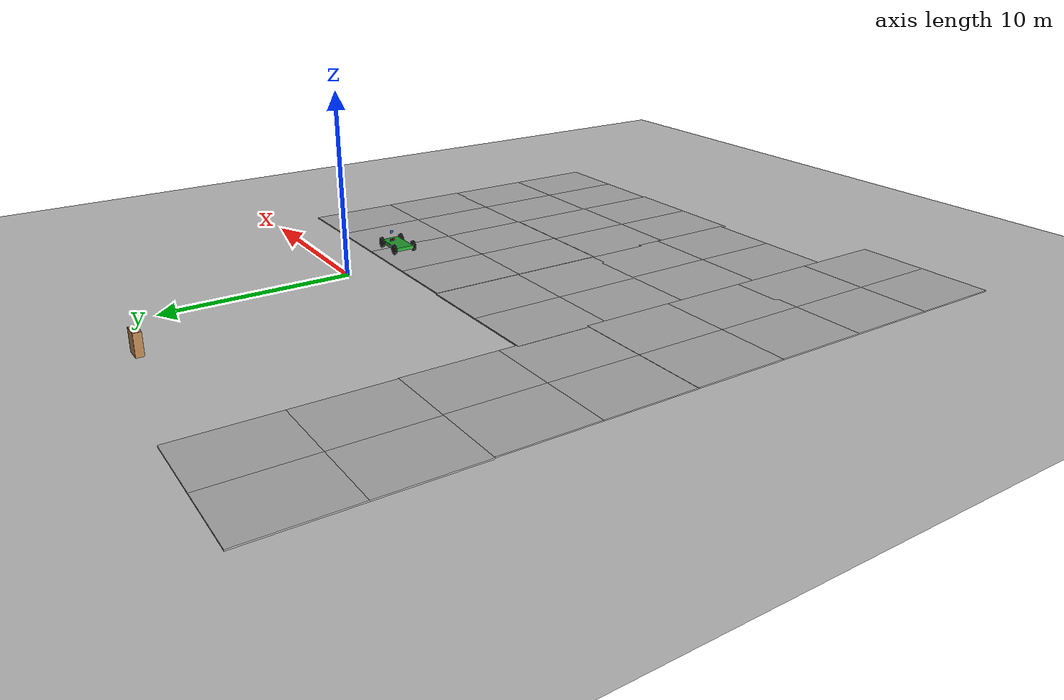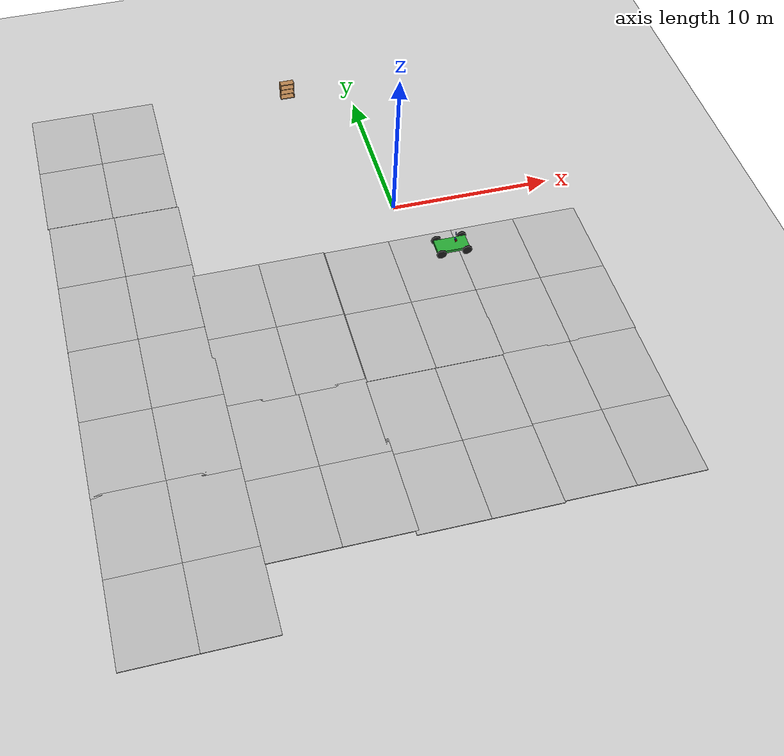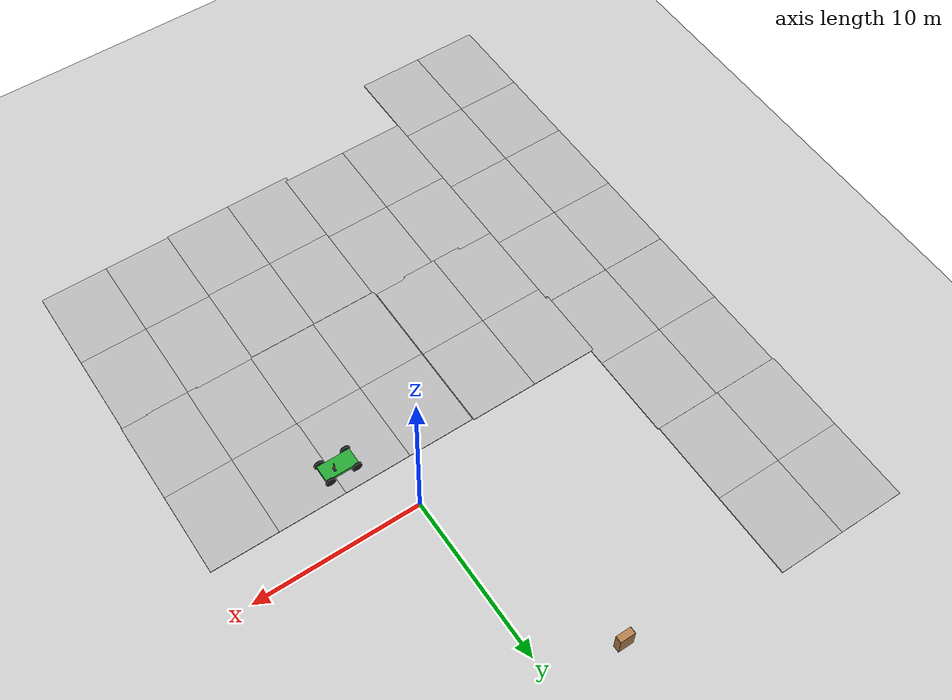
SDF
<sdf version="1.6">
 <world name="default">
  <light name="sun" type="directional">
   <pose>0 0 10 0 -0 0</pose>
   <diffuse>0.8 0.8 0.8 1</diffuse>
   <specular>0.1 0.1 0.1 1</specular>
   <attenuation>
    <range>1000</range>
    <constant>0.9</constant>
    <linear>0.01</linear>
    <quadratic>0.001</quadratic>
   </attenuation>
   <direction>-0.5 0.5 -1</direction>
  </light>
  <model name="ground_plane">
   <static>1</static>
   <link name="link">
    <collision name="collision">
     <geometry><plane><normal>0 0 1</normal><size>100 100</size></plane></geometry>
     <surface><friction><ode><mu>100</mu><mu2>50</mu2></ode></friction></surface>
    </collision>
    <visual name="visual">
     <cast_shadows>0</cast_shadows>
     <geometry><plane><normal>0 0 1</normal><size>100 100</size></plane></geometry>
     <material>
      <script><uri>file://media/materials/scripts/gazebo.material</uri><name>Gazebo/Grey</name></script>
     </material>
    </visual>
   </link>
  </model>
  <gravity>0 0 -9.8</gravity>
  <magnetic_field>6e-06 2.3e-05 -4.2e-05</magnetic_field>
  <atmosphere type="adiabatic"/>
  <physics name="default_physics" default="0" type="ode">
   <max_step_size>0.001</max_step_size>
   <real_time_factor>1</real_time_factor>
   <real_time_update_rate>1000</real_time_update_rate>
  </physics>
  <scene><ambient>0.4 0.4 0.4 1</ambient><background>0.7 0.7 0.7 1</background><shadows>1</shadows></scene>
  <spherical_coordinates>
   <surface_model>EARTH_WGS84</surface_model>
   <latitude_deg>0</latitude_deg>
   <longitude_deg>0</longitude_deg>
   <elevation>0</elevation>
   <heading_deg>0</heading_deg>
  </spherical_coordinates>
  <model name="mud_box">
   <static>1</static>
   <link name="link">
    <collision name="collision"><geometry><box><size>8 10 0.2</size></box></geometry></collision>
    <visual name="visual_1">
     <pose>-2 2.5 0 0 -0 0</pose>
     <cast_shadows>0</cast_shadows>
     <geometry><box><size>4 5 0.2</size></box></geometry>
     <material>
      <script>
       <uri>model://mud_box/materials/scripts</uri>
       <uri>model://mud_box/materials/textures</uri>
       <name>vrc/mud</name>
      </script>
     </material>
    </visual>
    <visual name="visual_2">
     <pose>2 2.5 0 0 -0 0</pose>
     <cast_shadows>0</cast_shadows>
     <geometry><box><size>4 5 0.2</size></box></geometry>
     <material>
      <script>
       <uri>model://mud_box/materials/scripts</uri>
       <uri>model://mud_box/materials/textures</uri>
       <name>vrc/mud</name>
      </script>
     </material>
    </visual>
    <visual name="visual_3">
     <pose>2 -2.5 0 0 -0 0</pose>
     <cast_shadows>0</cast_shadows>
     <geometry><box><size>4 5 0.2</size></box></geometry>
     <material>
      <script>
       <uri>model://mud_box/materials/scripts</uri>
       <uri>model://mud_box/materials/textures</uri>
       <name>vrc/mud</name>
      </script>
     </material>
    </visual>
    <visual name="visual_4">
     <pose>-2 -2.5 0 0 -0 0</pose>
     <cast_shadows>0</cast_shadows>
     <geometry><box><size>4 5 0.2</size></box></geometry>
     <material>
      <script>
       <uri>model://mud_box/materials/scripts</uri>
       <uri>model://mud_box/materials/textures</uri>
       <name>vrc/mud</name>
      </script>
     </material>
    </visual>
   </link>
   <pose>-16.9962 -11.5989 -0.09 0 -0 0</pose>
  </model>
  <model name="mud_box_clone">
   <static>1</static>
   <link name="link">
    <collision name="collision"><geometry><box><size>8 10 0.2</size></box></geometry></collision>
    <visual name="visual_1">
     <pose>-2 2.5 0 0 -0 0</pose>
     <cast_shadows>0</cast_shadows>
     <geometry><box><size>4 5 0.2</size></box></geometry>
     <material>
      <script>
       <uri>model://mud_box/materials/scripts</uri>
       <uri>model://mud_box/materials/textures</uri>
       <name>vrc/mud</name>
      </script>
     </material>
    </visual>
    <visual name="visual_2">
     <pose>2 2.5 0 0 -0 0</pose>
     <cast_shadows>0</cast_shadows>
     <geometry><box><size>4 5 0.2</size></box></geometry>
     <material>
      <script>
       <uri>model://mud_box/materials/scripts</uri>
       <uri>model://mud_box/materials/textures</uri>
       <name>vrc/mud</name>
      </script>
     </material>
    </visual>
    <visual name="visual_3">
     <pose>2 -2.5 0 0 -0 0</pose>
     <cast_shadows>0</cast_shadows>
     <geometry><box><size>4 5 0.2</size></box></geometry>
     <material>
      <script>
       <uri>model://mud_box/materials/scripts</uri>
       <uri>model://mud_box/materials/textures</uri>
       <name>vrc/mud</name>
      </script>
     </material>
    </visual>
    <visual name="visual_4">
     <pose>-2 -2.5 0 0 -0 0</pose>
     <cast_shadows>0</cast_shadows>
     <geometry><box><size>4 5 0.2</size></box></geometry>
     <material>
      <script>
       <uri>model://mud_box/materials/scripts</uri>
       <uri>model://mud_box/materials/textures</uri>
       <name>vrc/mud</name>
      </script>
     </material>
    </visual>
   </link>
   <pose>-9.14914 -7.62362 -0.09 0 -0 0</pose>
  </model>
  <model name="mud_box_clone_0">
   <static>1</static>
   <link name="link">
    <collision name="collision"><geometry><box><size>8 10 0.2</size></box></geometry></collision>
    <visual name="visual_1">
     <pose>-2 2.5 0 0 -0 0</pose>
     <cast_shadows>0</cast_shadows>
     <geometry><box><size>4 5 0.2</size></box></geometry>
     <material>
      <script>
       <uri>model://mud_box/materials/scripts</uri>
       <uri>model://mud_box/materials/textures</uri>
       <name>vrc/mud</name>
      </script>
     </material>
    </visual>
    <visual name="visual_2">
     <pose>2 2.5 0 0 -0 0</pose>
     <cast_shadows>0</cast_shadows>
     <geometry><box><size>4 5 0.2</size></box></geometry>
     <material>
      <script>
       <uri>model://mud_box/materials/scripts</uri>
       <uri>model://mud_box/materials/textures</uri>
       <name>vrc/mud</name>
      </script>
     </material>
    </visual>
    <visual name="visual_3">
     <pose>2 -2.5 0 0 -0 0</pose>
     <cast_shadows>0</cast_shadows>
     <geometry><box><size>4 5 0.2</size></box></geometry>
     <material>
      <script>
       <uri>model://mud_box/materials/scripts</uri>
       <uri>model://mud_box/materials/textures</uri>
       <name>vrc/mud</name>
      </script>
     </material>
    </visual>
    <visual name="visual_4">
     <pose>-2 -2.5 0 0 -0 0</pose>
     <cast_shadows>0</cast_shadows>
     <geometry><box><size>4 5 0.2</size></box></geometry>
     <material>
      <script>
       <uri>model://mud_box/materials/scripts</uri>
       <uri>model://mud_box/materials/textures</uri>
       <name>vrc/mud</name>
      </script>
     </material>
    </visual>
   </link>
   <pose>6.85038 -7.69484 -0.09 0 -0 0</pose>
  </model>
  <model name="mud_box_clone_1">
   <static>1</static>
   <link name="link">
    <collision name="collision"><geometry><box><size>8 10 0.2</size></box></geometry></collision>
    <visual name="visual_1">
     <pose>-2 2.5 0 0 -0 0</pose>
     <cast_shadows>0</cast_shadows>
     <geometry><box><size>4 5 0.2</size></box></geometry>
     <material>
      <script>
       <uri>model://mud_box/materials/scripts</uri>
       <uri>model://mud_box/materials/textures</uri>
       <name>vrc/mud</name>
      </script>
     </material>
    </visual>
    <visual name="visual_2">
     <pose>2 2.5 0 0 -0 0</pose>
     <cast_shadows>0</cast_shadows>
     <geometry><box><size>4 5 0.2</size></box></geometry>
     <material>
      <script>
       <uri>model://mud_box/materials/scripts</uri>
       <uri>model://mud_box/materials/textures</uri>
       <name>vrc/mud</name>
      </script>
     </material>
    </visual>
    <visual name="visual_3">
     <pose>2 -2.5 0 0 -0 0</pose>
     <cast_shadows>0</cast_shadows>
     <geometry><box><size>4 5 0.2</size></box></geometry>
     <material>
      <script>
       <uri>model://mud_box/materials/scripts</uri>
       <uri>model://mud_box/materials/textures</uri>
       <name>vrc/mud</name>
      </script>
     </material>
    </visual>
    <visual name="visual_4">
     <pose>-2 -2.5 0 0 -0 0</pose>
     <cast_shadows>0</cast_shadows>
     <geometry><box><size>4 5 0.2</size></box></geometry>
     <material>
      <script>
       <uri>model://mud_box/materials/scripts</uri>
       <uri>model://mud_box/materials/textures</uri>
       <name>vrc/mud</name>
      </script>
     </material>
    </visual>
   </link>
   <pose>-16.9856 -21.3949 -0.09 0 -0 0</pose>
  </model>
  <model name="mud_box_clone_2">
   <static>1</static>
   <link name="link">
    <collision name="collision"><geometry><box><size>8 10 0.2</size></box></geometry></collision>
    <visual name="visual_1">
     <pose>-2 2.5 0 0 -0 0</pose>
     <cast_shadows>0</cast_shadows>
     <geometry><box><size>4 5 0.2</size></box></geometry>
     <material>
      <script>
       <uri>model://mud_box/materials/scripts</uri>
       <uri>model://mud_box/materials/textures</uri>
       <name>vrc/mud</name>
      </script>
     </material>
    </visual>
    <visual name="visual_2">
     <pose>2 2.5 0 0 -0 0</pose>
     <cast_shadows>0</cast_shadows>
     <geometry><box><size>4 5 0.2</size></box></geometry>
     <material>
      <script>
       <uri>model://mud_box/materials/scripts</uri>
       <uri>model://mud_box/materials/textures</uri>
       <name>vrc/mud</name>
      </script>
     </material>
    </visual>
    <visual name="visual_3">
     <pose>2 -2.5 0 0 -0 0</pose>
     <cast_shadows>0</cast_shadows>
     <geometry><box><size>4 5 0.2</size></box></geometry>
     <material>
      <script>
       <uri>model://mud_box/materials/scripts</uri>
       <uri>model://mud_box/materials/textures</uri>
       <name>vrc/mud</name>
      </script>
     </material>
    </visual>
    <visual name="visual_4">
     <pose>-2 -2.5 0 0 -0 0</pose>
     <cast_shadows>0</cast_shadows>
     <geometry><box><size>4 5 0.2</size></box></geometry>
     <material>
      <script>
       <uri>model://mud_box/materials/scripts</uri>
       <uri>model://mud_box/materials/textures</uri>
       <name>vrc/mud</name>
      </script>
     </material>
    </visual>
   </link>
   <pose>-17.0738 8.34384 -0.09 0 -0 0</pose>
  </model>
  <model name="mud_box_clone_2_clone">
   <static>1</static>
   <link name="link">
    <collision name="collision"><geometry><box><size>8 10 0.2</size></box></geometry></collision>
    <visual name="visual_1">
     <pose>-2 2.5 0 0 -0 0</pose>
     <cast_shadows>0</cast_shadows>
     <geometry><box><size>4 5 0.2</size></box></geometry>
     <material>
      <script>
       <uri>model://mud_box/materials/scripts</uri>
       <uri>model://mud_box/materials/textures</uri>
       <name>vrc/mud</name>
      </script>
     </material>
    </visual>
    <visual name="visual_2">
     <pose>2 2.5 0 0 -0 0</pose>
     <cast_shadows>0</cast_shadows>
     <geometry><box><size>4 5 0.2</size></box></geometry>
     <material>
      <script>
       <uri>model://mud_box/materials/scripts</uri>
       <uri>model://mud_box/materials/textures</uri>
       <name>vrc/mud</name>
      </script>
     </material>
    </visual>
    <visual name="visual_3">
     <pose>2 -2.5 0 0 -0 0</pose>
     <cast_shadows>0</cast_shadows>
     <geometry><box><size>4 5 0.2</size></box></geometry>
     <material>
      <script>
       <uri>model://mud_box/materials/scripts</uri>
       <uri>model://mud_box/materials/textures</uri>
       <name>vrc/mud</name>
      </script>
     </material>
    </visual>
    <visual name="visual_4">
     <pose>-2 -2.5 0 0 -0 0</pose>
     <cast_shadows>0</cast_shadows>
     <geometry><box><size>4 5 0.2</size></box></geometry>
     <material>
      <script>
       <uri>model://mud_box/materials/scripts</uri>
       <uri>model://mud_box/materials/textures</uri>
       <name>vrc/mud</name>
      </script>
     </material>
    </visual>
   </link>
   <pose>-17.0012 -1.66156 -0.098473 3.14159 -0 3.14159</pose>
  </model>
  <model name="mud_box_clone_2_clone_0">
   <static>1</static>
   <link name="link">
    <collision name="collision"><geometry><box><size>8 10 0.2</size></box></geometry></collision>
    <visual name="visual_1">
     <pose>-2 2.5 0 0 -0 0</pose>
     <cast_shadows>0</cast_shadows>
     <geometry><box><size>4 5 0.2</size></box></geometry>
     <material>
      <script>
       <uri>model://mud_box/materials/scripts</uri>
       <uri>model://mud_box/materials/textures</uri>
       <name>vrc/mud</name>
      </script>
     </material>
    </visual>
    <visual name="visual_2">
     <pose>2 2.5 0 0 -0 0</pose>
     <cast_shadows>0</cast_shadows>
     <geometry><box><size>4 5 0.2</size></box></geometry>
     <material>
      <script>
       <uri>model://mud_box/materials/scripts</uri>
       <uri>model://mud_box/materials/textures</uri>
       <name>vrc/mud</name>
      </script>
     </material>
    </visual>
    <visual name="visual_3">
     <pose>2 -2.5 0 0 -0 0</pose>
     <cast_shadows>0</cast_shadows>
     <geometry><box><size>4 5 0.2</size></box></geometry>
     <material>
      <script>
       <uri>model://mud_box/materials/scripts</uri>
       <uri>model://mud_box/materials/textures</uri>
       <name>vrc/mud</name>
      </script>
     </material>
    </visual>
    <visual name="visual_4">
     <pose>-2 -2.5 0 0 -0 0</pose>
     <cast_shadows>0</cast_shadows>
     <geometry><box><size>4 5 0.2</size></box></geometry>
     <material>
      <script>
       <uri>model://mud_box/materials/scripts</uri>
       <uri>model://mud_box/materials/textures</uri>
       <name>vrc/mud</name>
      </script>
     </material>
    </visual>
   </link>
   <pose>6.81372 -17.6242 -0.09 0 -0 0</pose>
  </model>
  <model name="mud_box_clone_2_clone_1">
   <static>1</static>
   <link name="link">
    <collision name="collision"><geometry><box><size>8 10 0.2</size></box></geometry></collision>
    <visual name="visual_1">
     <pose>-2 2.5 0 0 -0 0</pose>
     <cast_shadows>0</cast_shadows>
     <geometry><box><size>4 5 0.2</size></box></geometry>
     <material>
      <script>
       <uri>model://mud_box/materials/scripts</uri>
       <uri>model://mud_box/materials/textures</uri>
       <name>vrc/mud</name>
      </script>
     </material>
    </visual>
    <visual name="visual_2">
     <pose>2 2.5 0 0 -0 0</pose>
     <cast_shadows>0</cast_shadows>
     <geometry><box><size>4 5 0.2</size></box></geometry>
     <material>
      <script>
       <uri>model://mud_box/materials/scripts</uri>
       <uri>model://mud_box/materials/textures</uri>
       <name>vrc/mud</name>
      </script>
     </material>
    </visual>
    <visual name="visual_3">
     <pose>2 -2.5 0 0 -0 0</pose>
     <cast_shadows>0</cast_shadows>
     <geometry><box><size>4 5 0.2</size></box></geometry>
     <material>
      <script>
       <uri>model://mud_box/materials/scripts</uri>
       <uri>model://mud_box/materials/textures</uri>
       <name>vrc/mud</name>
      </script>
     </material>
    </visual>
    <visual name="visual_4">
     <pose>-2 -2.5 0 0 -0 0</pose>
     <cast_shadows>0</cast_shadows>
     <geometry><box><size>4 5 0.2</size></box></geometry>
     <material>
      <script>
       <uri>model://mud_box/materials/scripts</uri>
       <uri>model://mud_box/materials/textures</uri>
       <name>vrc/mud</name>
      </script>
     </material>
    </visual>
   </link>
   <pose>-8.99999 -17.4599 -0.09 0 -0 0</pose>
  </model>
  <model name="mud_box_clone_2_clone_2">
   <static>1</static>
   <link name="link">
    <collision name="collision"><geometry><box><size>8 10 0.2</size></box></geometry></collision>
    <visual name="visual_1">
     <pose>-2 2.5 0 0 -0 0</pose>
     <cast_shadows>0</cast_shadows>
     <geometry><box><size>4 5 0.2</size></box></geometry>
     <material>
      <script>
       <uri>model://mud_box/materials/scripts</uri>
       <uri>model://mud_box/materials/textures</uri>
       <name>vrc/mud</name>
      </script>
     </material>
    </visual>
    <visual name="visual_2">
     <pose>2 2.5 0 0 -0 0</pose>
     <cast_shadows>0</cast_shadows>
     <geometry><box><size>4 5 0.2</size></box></geometry>
     <material>
      <script>
       <uri>model://mud_box/materials/scripts</uri>
       <uri>model://mud_box/materials/textures</uri>
       <name>vrc/mud</name>
      </script>
     </material>
    </visual>
    <visual name="visual_3">
     <pose>2 -2.5 0 0 -0 0</pose>
     <cast_shadows>0</cast_shadows>
     <geometry><box><size>4 5 0.2</size></box></geometry>
     <material>
      <script>
       <uri>model://mud_box/materials/scripts</uri>
       <uri>model://mud_box/materials/textures</uri>
       <name>vrc/mud</name>
      </script>
     </material>
    </visual>
    <visual name="visual_4">
     <pose>-2 -2.5 0 0 -0 0</pose>
     <cast_shadows>0</cast_shadows>
     <geometry><box><size>4 5 0.2</size></box></geometry>
     <material>
      <script>
       <uri>model://mud_box/materials/scripts</uri>
       <uri>model://mud_box/materials/textures</uri>
       <name>vrc/mud</name>
      </script>
     </material>
    </visual>
   </link>
   <pose>-1.1024 -7.68988 -0.09 0 -0 0</pose>
  </model>
  <model name="mud_box_clone_2_clone_3">
   <static>1</static>
   <link name="link">
    <collision name="collision"><geometry><box><size>8 10 0.2</size></box></geometry></collision>
    <visual name="visual_1">
     <pose>-2 2.5 0 0 -0 0</pose>
     <cast_shadows>0</cast_shadows>
     <geometry><box><size>4 5 0.2</size></box></geometry>
     <material>
      <script>
       <uri>model://mud_box/materials/scripts</uri>
       <uri>model://mud_box/materials/textures</uri>
       <name>vrc/mud</name>
      </script>
     </material>
    </visual>
    <visual name="visual_2">
     <pose>2 2.5 0 0 -0 0</pose>
     <cast_shadows>0</cast_shadows>
     <geometry><box><size>4 5 0.2</size></box></geometry>
     <material>
      <script>
       <uri>model://mud_box/materials/scripts</uri>
       <uri>model://mud_box/materials/textures</uri>
       <name>vrc/mud</name>
      </script>
     </material>
    </visual>
    <visual name="visual_3">
     <pose>2 -2.5 0 0 -0 0</pose>
     <cast_shadows>0</cast_shadows>
     <geometry><box><size>4 5 0.2</size></box></geometry>
     <material>
      <script>
       <uri>model://mud_box/materials/scripts</uri>
       <uri>model://mud_box/materials/textures</uri>
       <name>vrc/mud</name>
      </script>
     </material>
    </visual>
    <visual name="visual_4">
     <pose>-2 -2.5 0 0 -0 0</pose>
     <cast_shadows>0</cast_shadows>
     <geometry><box><size>4 5 0.2</size></box></geometry>
     <material>
      <script>
       <uri>model://mud_box/materials/scripts</uri>
       <uri>model://mud_box/materials/textures</uri>
       <name>vrc/mud</name>
      </script>
     </material>
    </visual>
   </link>
   <pose>-1.17426 -17.707 -0.09 0 -0 0</pose>
  </model>
  <model name="car">
   <link name="chassis">
    <pose>0 0 0.3 0 -0 0</pose>
    <collision name="collision"><geometry><box><size>2 1 0.2</size></box></geometry></collision>
    <visual name="visual">
     <geometry><box><size>2 1 0.2</size></box></geometry>
     <material>
      <script><uri>file://media/materials/scripts/gazebo.material</uri><name>Gazebo/Green</name></script>
     </material>
    </visual>
    <inertial>
     <inertia><ixx>1</ixx><ixy>0</ixy><ixz>0</ixz><iyy>1</iyy><iyz>0</iyz><izz>1</izz></inertia>
     <mass>1</mass>
    </inertial>
   </link>
   <link name="front_left_wheel">
    <pose>0.8 0.6 0.3 -0 1.5707 1.5707</pose>
    <collision name="collision">
     <geometry><cylinder><radius>0.3</radius><length>0.1</length></cylinder></geometry>
    </collision>
    <visual name="visual">
     <geometry><cylinder><radius>0.3</radius><length>0.1</length></cylinder></geometry>
     <material>
      <script><uri>file://media/materials/scripts/gazebo.material</uri><name>Gazebo/Black</name></script>
     </material>
    </visual>
    <inertial>
     <inertia><ixx>1</ixx><ixy>0</ixy><ixz>0</ixz><iyy>1</iyy><iyz>0</iyz><izz>1</izz></inertia>
     <mass>1</mass>
    </inertial>
   </link>
   <link name="front_right_wheel">
    <pose>0.8 -0.6 0.3 -0 1.5707 1.5707</pose>
    <collision name="collision">
     <geometry><cylinder><radius>0.3</radius><length>0.1</length></cylinder></geometry>
    </collision>
    <visual name="visual">
     <geometry><cylinder><radius>0.3</radius><length>0.1</length></cylinder></geometry>
     <material>
      <script><uri>file://media/materials/scripts/gazebo.material</uri><name>Gazebo/Black</name></script>
     </material>
    </visual>
    <inertial>
     <inertia><ixx>1</ixx><ixy>0</ixy><ixz>0</ixz><iyy>1</iyy><iyz>0</iyz><izz>1</izz></inertia>
     <mass>1</mass>
    </inertial>
   </link>
   <link name="back_right_wheel">
    <pose>-0.8 -0.6 0.3 -0 1.5707 1.5707</pose>
    <collision name="collision">
     <geometry><cylinder><radius>0.3</radius><length>0.1</length></cylinder></geometry>
    </collision>
    <visual name="visual">
     <geometry><cylinder><radius>0.3</radius><length>0.1</length></cylinder></geometry>
     <material>
      <script><uri>file://media/materials/scripts/gazebo.material</uri><name>Gazebo/Black</name></script>
     </material>
    </visual>
    <inertial>
     <inertia><ixx>1</ixx><ixy>0</ixy><ixz>0</ixz><iyy>1</iyy><iyz>0</iyz><izz>1</izz></inertia>
     <mass>1</mass>
    </inertial>
   </link>
   <link name="back_left_wheel">
    <pose>-0.8 0.6 0.3 -0 1.5707 1.5707</pose>
    <collision name="collision">
     <geometry><cylinder><radius>0.3</radius><length>0.1</length></cylinder></geometry>
    </collision>
    <visual name="visual">
     <geometry><cylinder><radius>0.3</radius><length>0.1</length></cylinder></geometry>
     <material>
      <script><uri>file://media/materials/scripts/gazebo.material</uri><name>Gazebo/Black</name></script>
     </material>
    </visual>
    <inertial>
     <inertia><ixx>1</ixx><ixy>0</ixy><ixz>0</ixz><iyy>1</iyy><iyz>0</iyz><izz>1</izz></inertia>
     <mass>1</mass>
    </inertial>
   </link>
   <link name="gas_pedal">
    <pose>0.3 0.1 0.5 0 -0 0</pose>
    <collision name="collision"><geometry><box><size>0.1 0.1 0.1</size></box></geometry></collision>
    <visual name="visual">
     <geometry><box><size>0.1 0.1 0.1</size></box></geometry>
     <material>
      <script><uri>file://media/materials/scripts/gazebo.material</uri><name>Gazebo/Red</name></script>
     </material>
    </visual>
    <inertial>
     <inertia><ixx>1</ixx><ixy>0</ixy><ixz>0</ixz><iyy>1</iyy><iyz>0</iyz><izz>1</izz></inertia>
     <mass>1</mass>
    </inertial>
   </link>
   <link name="brake_pedal">
    <pose>0.3 0.25 0.5 0 -0 0</pose>
    <collision name="collision"><geometry><box><size>0.1 0.1 0.1</size></box></geometry></collision>
    <visual name="visual">
     <geometry><box><size>0.1 0.1 0.1</size></box></geometry>
     <material>
      <script><uri>file://media/materials/scripts/gazebo.material</uri><name>Gazebo/Blue</name></script>
     </material>
    </visual>
    <inertial>
     <inertia><ixx>1</ixx><ixy>0</ixy><ixz>0</ixz><iyy>1</iyy><iyz>0</iyz><izz>1</izz></inertia>
     <mass>1</mass>
    </inertial>
   </link>
   <link name="steering_wheel">
    <pose>0.3 0.2 1 0 1.5707 0</pose>
    <collision name="collision">
     <geometry><cylinder><radius>0.1</radius><length>0.01</length></cylinder></geometry>
    </collision>
    <visual name="visual">
     <geometry><cylinder><radius>0.1</radius><length>0.01</length></cylinder></geometry>
     <material>
      <script><uri>file://media/materials/scripts/gazebo.material</uri><name>Gazebo/Blue</name></script>
     </material>
    </visual>
    <inertial>
     <inertia><ixx>1</ixx><ixy>0</ixy><ixz>0</ixz><iyy>1</iyy><iyz>0</iyz><izz>1</izz></inertia>
     <mass>1</mass>
    </inertial>
   </link>
   <joint name="gas_joint" type="prismatic">
    <parent>chassis</parent>
    <child>gas_pedal</child>
    <axis>
     <xyz>1 0 0</xyz>
     <limit><lower>0</lower><upper>0.2</upper></limit>
     <use_parent_model_frame>1</use_parent_model_frame>
     <dynamics><spring_reference>0</spring_reference><spring_stiffness>0</spring_stiffness></dynamics>
    </axis>
   </joint>
   <joint name="brake_joint" type="prismatic">
    <parent>chassis</parent>
    <child>brake_pedal</child>
    <axis>
     <xyz>1 0 0</xyz>
     <limit><lower>0</lower><upper>0.2</upper></limit>
     <use_parent_model_frame>1</use_parent_model_frame>
     <dynamics><spring_reference>0</spring_reference><spring_stiffness>0</spring_stiffness></dynamics>
    </axis>
   </joint>
   <joint name="steering_joint" type="revolute">
    <parent>chassis</parent>
    <child>steering_wheel</child>
    <axis>
     <xyz>1 0 0</xyz>
     <limit><lower>-7.853</lower><upper>7.853</upper></limit>
     <use_parent_model_frame>1</use_parent_model_frame>
     <dynamics><spring_reference>0</spring_reference><spring_stiffness>0</spring_stiffness></dynamics>
    </axis>
   </joint>
   <joint name="front_left_joint" type="revolute2">
    <parent>chassis</parent>
    <child>front_left_wheel</child>
    <axis>
     <xyz>0 0 1</xyz>
     <limit><lower>8.56096e-06</lower><upper>8.56096e-06</upper></limit>
     <use_parent_model_frame>1</use_parent_model_frame>
     <dynamics><spring_reference>0</spring_reference><spring_stiffness>0</spring_stiffness></dynamics>
    </axis>
    <axis2>
     <xyz>0 1 0</xyz>
     <use_parent_model_frame>1</use_parent_model_frame>
     <dynamics><spring_reference>0</spring_reference><spring_stiffness>0</spring_stiffness></dynamics>
    </axis2>
    <physics><ode><limit><cfm>0</cfm><erp>0.9</erp></limit></ode></physics>
   </joint>
   <joint name="front_right_joint" type="revolute2">
    <parent>chassis</parent>
    <child>front_right_wheel</child>
    <axis>
     <xyz>0 0 1</xyz>
     <limit><lower>8.56096e-06</lower><upper>8.56096e-06</upper></limit>
     <use_parent_model_frame>1</use_parent_model_frame>
     <dynamics><spring_reference>0</spring_reference><spring_stiffness>0</spring_stiffness></dynamics>
    </axis>
    <axis2>
     <xyz>0 1 0</xyz>
     <use_parent_model_frame>1</use_parent_model_frame>
     <dynamics><spring_reference>0</spring_reference><spring_stiffness>0</spring_stiffness></dynamics>
    </axis2>
    <physics><ode><limit><cfm>0</cfm><erp>0.9</erp></limit></ode></physics>
   </joint>
   <joint name="back_right_joint" type="revolute2">
    <parent>chassis</parent>
    <child>back_right_wheel</child>
    <axis>
     <xyz>0 0 1</xyz>
     <limit><lower>0</lower><upper>0</upper></limit>
     <use_parent_model_frame>1</use_parent_model_frame>
     <dynamics><spring_reference>0</spring_reference><spring_stiffness>0</spring_stiffness></dynamics>
    </axis>
    <axis2>
     <xyz>0 1 0</xyz>
     <use_parent_model_frame>1</use_parent_model_frame>
     <dynamics><spring_reference>0</spring_reference><spring_stiffness>0</spring_stiffness></dynamics>
    </axis2>
    <physics><ode><limit><cfm>0</cfm><erp>0.9</erp></limit></ode></physics>
   </joint>
   <joint name="back_left_joint" type="revolute2">
    <parent>chassis</parent>
    <child>back_left_wheel</child>
    <axis>
     <xyz>0 0 1</xyz>
     <limit><lower>0</lower><upper>0</upper></limit>
     <use_parent_model_frame>1</use_parent_model_frame>
     <dynamics><spring_reference>0</spring_reference><spring_stiffness>0</spring_stiffness></dynamics>
    </axis>
    <axis2>
     <xyz>0 1 0</xyz>
     <use_parent_model_frame>1</use_parent_model_frame>
     <dynamics><spring_reference>0</spring_reference><spring_stiffness>0</spring_stiffness></dynamics>
    </axis2>
    <physics><ode><limit><cfm>0</cfm><erp>0.9</erp></limit></ode></physics>
   </joint>
   <plugin name="vehicle" filename="libVehiclePlugin.so">
    <front_left>front_left_joint</front_left>
    <front_right>front_right_joint</front_right>
    <back_left>back_left_joint</back_left>
    <back_right>back_right_joint</back_right>
    <gas>gas_joint</gas>
    <brake>brake_joint</brake>
    <steering>steering_joint</steering>
    <front_power>10</front_power>
    <rear_power>10</rear_power>
    <tire_angle_range>0.5</tire_angle_range>
    <max_speed>10</max_speed>
    <aero_load>0.1</aero_load>
   </plugin>
   <pose>2.44286 -4.1466 0.007394 -0.000271 0.000918 8.3e-05</pose>
  </model>
  <model name="bookshelf">
   <static>1</static>
   <link name="link">
    <inertial><mass>1</mass></inertial>
    <collision name="back">
     <pose>0 0.005 0.6 0 -0 0</pose>
     <geometry><box><size>0.9 0.01 1.2</size></box></geometry>
    </collision>
    <visual name="visual1">
     <pose>0 0.005 0.6 0 -0 0</pose>
     <geometry><box><size>0.9 0.01 1.2</size></box></geometry>
     <material>
      <script><uri>file://media/materials/scripts/gazebo.material</uri><name>Gazebo/Wood</name></script>
     </material>
    </visual>
    <collision name="left_side">
     <pose>0.45 -0.195 0.6 0 -0 0</pose>
     <geometry><box><size>0.02 0.4 1.2</size></box></geometry>
    </collision>
    <visual name="visual2">
     <pose>0.45 -0.195 0.6 0 -0 0</pose>
     <geometry><box><size>0.02 0.4 1.2</size></box></geometry>
     <material>
      <script><uri>file://media/materials/scripts/gazebo.material</uri><name>Gazebo/Wood</name></script>
     </material>
    </visual>
    <collision name="right_side">
     <pose>-0.45 -0.195 0.6 0 -0 0</pose>
     <geometry><box><size>0.02 0.4 1.2</size></box></geometry>
    </collision>
    <visual name="visual3">
     <pose>-0.45 -0.195 0.6 0 -0 0</pose>
     <geometry><box><size>0.02 0.4 1.2</size></box></geometry>
     <material>
      <script><uri>file://media/materials/scripts/gazebo.material</uri><name>Gazebo/Wood</name></script>
     </material>
    </visual>
    <collision name="bottom">
     <pose>0 -0.195 0.03 0 -0 0</pose>
     <geometry><box><size>0.88 0.4 0.06</size></box></geometry>
    </collision>
    <visual name="visual4">
     <pose>0 -0.195 0.03 0 -0 0</pose>
     <geometry><box><size>0.88 0.4 0.06</size></box></geometry>
     <material>
      <script><uri>file://media/materials/scripts/gazebo.material</uri><name>Gazebo/Wood</name></script>
     </material>
    </visual>
    <collision name="top">
     <pose>0 -0.195 1.19 0 -0 0</pose>
     <geometry><box><size>0.88 0.4 0.02</size></box></geometry>
    </collision>
    <visual name="visual5">
     <pose>0 -0.195 1.19 0 -0 0</pose>
     <geometry><box><size>0.88 0.4 0.02</size></box></geometry>
     <material>
      <script><uri>file://media/materials/scripts/gazebo.material</uri><name>Gazebo/Wood</name></script>
     </material>
    </visual>
    <collision name="low_shelf">
     <pose>0 -0.195 0.43 0 -0 0</pose>
     <geometry><box><size>0.88 0.4 0.02</size></box></geometry>
    </collision>
    <visual name="visual6">
     <pose>0 -0.195 0.43 0 -0 0</pose>
     <geometry><box><size>0.88 0.4 0.02</size></box></geometry>
     <material>
      <script><uri>file://media/materials/scripts/gazebo.material</uri><name>Gazebo/Wood</name></script>
     </material>
    </visual>
    <collision name="high_shelf">
     <pose>0 -0.195 0.8 0 -0 0</pose>
     <geometry><box><size>0.88 0.4 0.02</size></box></geometry>
    </collision>
    <visual name="visual7">
     <pose>0 -0.195 0.8 0 -0 0</pose>
     <geometry><box><size>0.88 0.4 0.02</size></box></geometry>
     <material>
      <script><uri>file://media/materials/scripts/gazebo.material</uri><name>Gazebo/Wood</name></script>
     </material>
    </visual>
   </link>
   <pose>-4.10665 12.0809 0 0 -0 0</pose>
  </model>
 </world>
</sdf>
